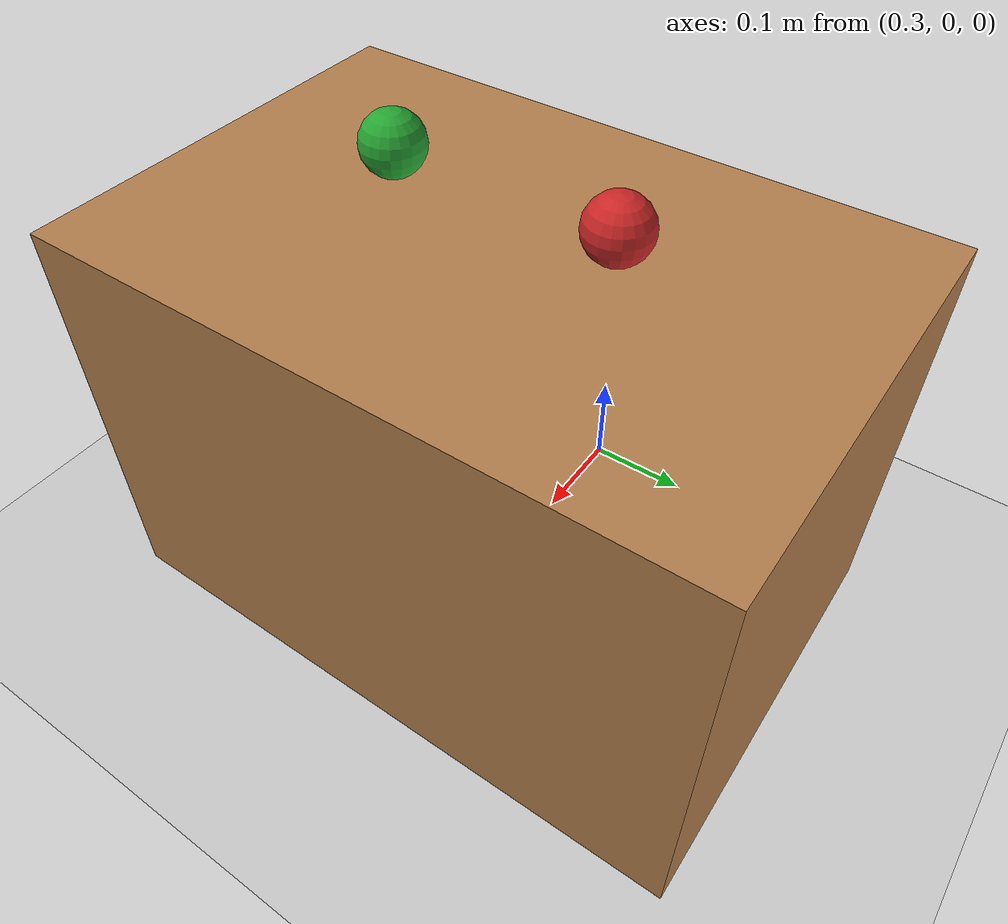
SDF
<?xml version="1.0" ?>
<sdf version="1.6">
  <world name="default">
    <include><uri>model://ground_plane</uri></include>
    <include><uri>model://sun</uri></include>

    <plugin name="gazebo_ros_state" filename="libgazebo_ros_state.so">
      <ros>
        <namespace>/gazebo</namespace>
      </ros>
      <update_rate>5.0</update_rate>
    </plugin>

    <!-- IFRA Link Attacher Plugin with correct filename -->
    <plugin name="ros2_linkattacher_plugin" filename="libgazebo_link_attacher.so"/>

    <model name="sorting_table">
      <static>true</static>
      <pose>0.5 0 0.2 0 0 0</pose>
      <link name="link">
        <collision name="collision">
          <geometry><box><size>0.4 0.6 0.4</size></box></geometry>
        </collision>
        <visual name="visual">
          <geometry><box><size>0.4 0.6 0.4</size></box></geometry>
          <material><script><name>Gazebo/Wood</name></script></material>
        </visual>
      </link>
    </model>

    <model name="red_apple">
      <pose>0.5 0.1 0.45 0 0 0</pose>
      <link name="link">
        <inertial>
          <mass>0.15</mass>
          <inertia>
            <ixx>0.0001</ixx>
            <ixy>0.0</ixy>
            <ixz>0.0</ixz>
            <iyy>0.0001</iyy>
            <iyz>0.0</iyz>
            <izz>0.0001</izz>
          </inertia>
        </inertial>
        <collision name="collision">
          <geometry><sphere><radius>0.0275</radius></sphere></geometry>
          <surface>
            <friction>
              <ode>
                <mu>1.0</mu>
                <mu2>1.0</mu2>
              </ode>
            </friction>
            <contact>
              <ode>
                <kp>100000.0</kp>
                <kd>1.0</kd>
                <min_depth>0.001</min_depth>
              </ode>
            </contact>
          </surface>
        </collision>
        <visual name="visual">
          <geometry><sphere><radius>0.0275</radius></sphere></geometry>
          <material><script><name>Gazebo/Red</name></script></material>
        </visual>
      </link>
    </model>

    <model name="green_apple">
      <pose>0.5 -0.1 0.45 0 0 0</pose>
      <link name="link">
        <inertial>
          <mass>0.15</mass>
          <inertia>
            <ixx>0.0001</ixx>
            <ixy>0.0</ixy>
            <ixz>0.0</ixz>
            <iyy>0.0001</iyy>
            <iyz>0.0</iyz>
            <izz>0.0001</izz>
          </inertia>
        </inertial>
        <collision name="collision">
          <geometry><sphere><radius>0.0275</radius></sphere></geometry>
          <surface>
            <friction>
              <ode>
                <mu>1.0</mu>
                <mu2>1.0</mu2>
              </ode>
            </friction>
            <contact>
              <ode>
                <kp>100000.0</kp>
                <kd>1.0</kd>
                <min_depth>0.001</min_depth>
              </ode>
            </contact>
          </surface>
        </collision>
        <visual name="visual">
          <geometry><sphere><radius>0.0275</radius></sphere></geometry>
          <material><script><name>Gazebo/Green</name></script></material>
        </visual>
      </link>
    </model>
  </world>
</sdf>
